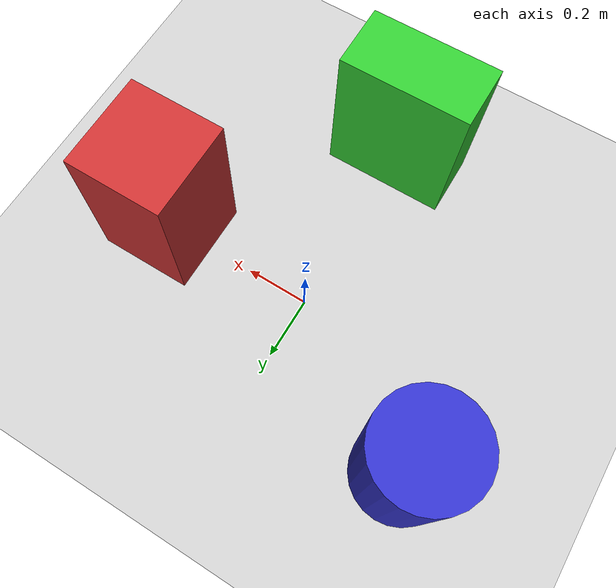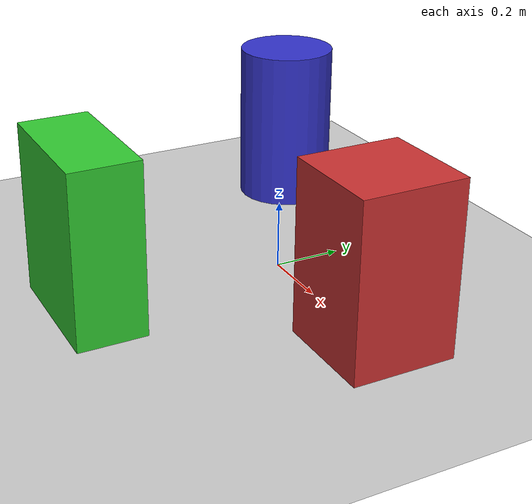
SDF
<?xml version="1.0" ?>
<sdf version="1.6">
  <world name="arena_obstacles">

    <!-- Освещение -->
    <include>
      <uri>model://sun</uri>
    </include>

    <!-- Плоскость -->
    <include>
      <uri>model://ground_plane</uri>
    </include>

    <!-- Физика -->
    <physics type="ode">
      <max_step_size>0.001</max_step_size>
      <real_time_factor>1.0</real_time_factor>
    </physics>

    <model name="box_1">
      <static>true</static>
      <pose>0.5 0.0 0.25 0 0 0</pose>

      <link name="link">
        <collision name="collision">
          <geometry>
            <box>
              <size>0.3 0.3 0.5</size>
            </box>
          </geometry>
        </collision>

        <visual name="visual">
          <geometry>
            <box>
              <size>0.3 0.3 0.5</size>
            </box>
          </geometry>
          <material>
            <ambient>0.8 0.2 0.2 1</ambient>
            <diffuse>0.8 0.2 0.2 1</diffuse>
          </material>
        </visual>
      </link>
    </model>

    <model name="cylinder_1">
      <static>true</static>
      <pose>-0.5 0.3 0.25 0 0 0</pose>

      <link name="link">
        <collision name="collision">
          <geometry>
            <cylinder>
              <radius>0.15</radius>
              <length>0.5</length>
            </cylinder>
          </geometry>
        </collision>

        <visual name="visual">
          <geometry>
            <cylinder>
              <radius>0.15</radius>
              <length>0.5</length>
            </cylinder>
          </geometry>
          <material>
            <ambient>0.2 0.2 0.8 1</ambient>
            <diffuse>0.2 0.2 0.8 1</diffuse>
          </material>
        </visual>
      </link>
    </model>

    <model name="box_2">
      <static>true</static>
      <pose>0.0 -0.6 0.25 0 0 0</pose>

      <link name="link">
        <collision name="collision">
          <geometry>
            <box>
              <size>0.4 0.2 0.5</size>
            </box>
          </geometry>
        </collision>

        <visual name="visual">
          <geometry>
            <box>
              <size>0.4 0.2 0.5</size>
            </box>
          </geometry>
          <material>
            <ambient>0.2 0.8 0.2 1</ambient>
            <diffuse>0.2 0.8 0.2 1</diffuse>
          </material>
        </visual>
      </link>
    </model>

    <model name="overhead_camera">
	  <static>true</static>

	  <link name="camera_link">
	    <pose>0 0 3.0 0 1.5708 0</pose> <!-- 3м вверх, смотрит вниз -->

	    <sensor name="camera" type="camera">
	      <always_on>true</always_on>
	      <update_rate>30</update_rate>
	      <visualize>true</visualize>

	      <camera>
		<horizontal_fov>1.047</horizontal_fov>
		<image>
		  <width>640</width>
		  <height>480</height>
		  <format>R8G8B8</format>
		</image>
		<clip>
		  <near>0.1</near>
		  <far>50</far>
		</clip>
	      </camera>

	      <plugin name="gazebo_ros_camera" filename="libgazebo_ros_camera.so">
		<robotNamespace>/</robotNamespace>
		<cameraName>camera</cameraName>
		<imageTopicName>image_raw</imageTopicName>
		<cameraInfoTopicName>camera_info</cameraInfoTopicName>
		<frameName>camera_link</frameName>
	      </plugin>
	    </sensor>
	  </link>
	</model>

  </world>
</sdf>
